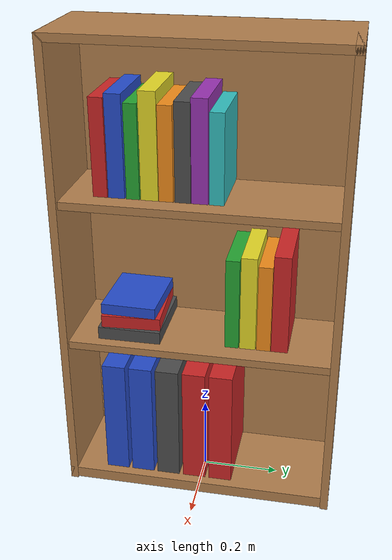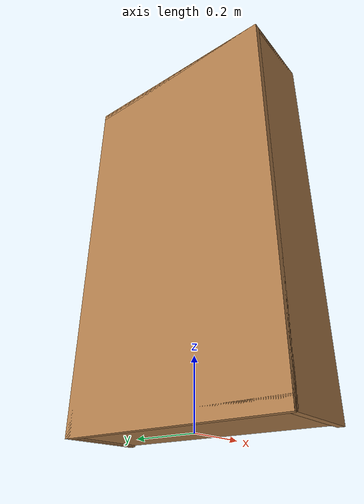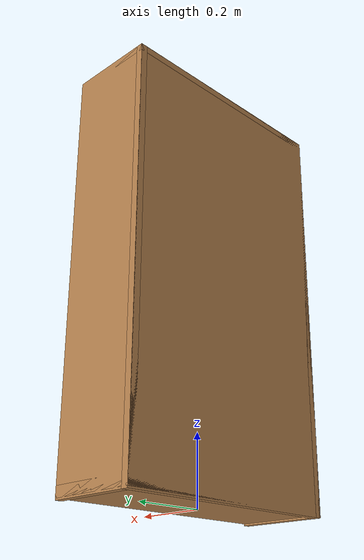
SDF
<?xml version="1.0" ?>
<sdf version="1.6">
  <model name="bookshelf_with_books">
    <static>true</static>
    <link name="bookshelf_link">
      <!-- Vách lưng tủ sách -->
      <collision name="col_back">
        <pose>-0.12 0 0.60 0 0 0</pose>
        <geometry>
          <box><size>0.02 0.70 1.20</size></box>
        </geometry>
      </collision>
      <visual name="vis_back">
        <pose>-0.12 0 0.60 0 0 0</pose>
        <geometry>
          <box><size>0.02 0.70 1.20</size></box>
        </geometry>
        <material>
          <script>
            <uri>file://media/materials/scripts/gazebo.material</uri>
            <name>Gazebo/Wood</name>
          </script>
        </material>
      </visual>

      <!-- Vách hông trái -->
      <collision name="col_left">
        <pose>0 0.34 0.60 0 0 0</pose>
        <geometry>
          <box><size>0.26 0.02 1.20</size></box>
        </geometry>
      </collision>
      <visual name="vis_left">
        <pose>0 0.34 0.60 0 0 0</pose>
        <geometry>
          <box><size>0.26 0.02 1.20</size></box>
        </geometry>
        <material>
          <script>
            <uri>file://media/materials/scripts/gazebo.material</uri>
            <name>Gazebo/Wood</name>
          </script>
        </material>
      </visual>

      <!-- Vách hông phải -->
      <collision name="col_right">
        <pose>0 -0.34 0.60 0 0 0</pose>
        <geometry>
          <box><size>0.26 0.02 1.20</size></box>
        </geometry>
      </collision>
      <visual name="vis_right">
        <pose>0 -0.34 0.60 0 0 0</pose>
        <geometry>
          <box><size>0.26 0.02 1.20</size></box>
        </geometry>
        <material>
          <script>
            <uri>file://media/materials/scripts/gazebo.material</uri>
            <name>Gazebo/Wood</name>
          </script>
        </material>
      </visual>

      <!-- Đáy tủ -->
      <collision name="col_shelf_base">
        <pose>0 0 0.02 0 0 0</pose>
        <geometry>
          <box><size>0.26 0.70 0.03</size></box>
        </geometry>
      </collision>
      <visual name="vis_shelf_base">
        <pose>0 0 0.02 0 0 0</pose>
        <geometry>
          <box><size>0.26 0.70 0.03</size></box>
        </geometry>
        <material>
          <script>
            <uri>file://media/materials/scripts/gazebo.material</uri>
            <name>Gazebo/Wood</name>
          </script>
        </material>
      </visual>

      <!-- Ngăn đợt 1 (giữa dưới) -->
      <collision name="col_shelf_1">
        <pose>0 0 0.42 0 0 0</pose>
        <geometry>
          <box><size>0.24 0.66 0.02</size></box>
        </geometry>
      </collision>
      <visual name="vis_shelf_1">
        <pose>0 0 0.42 0 0 0</pose>
        <geometry>
          <box><size>0.24 0.66 0.02</size></box>
        </geometry>
        <material>
          <script>
            <uri>file://media/materials/scripts/gazebo.material</uri>
            <name>Gazebo/Wood</name>
          </script>
        </material>
      </visual>

      <!-- Ngăn đợt 2 (giữa trên) -->
      <collision name="col_shelf_2">
        <pose>0 0 0.80 0 0 0</pose>
        <geometry>
          <box><size>0.24 0.66 0.02</size></box>
        </geometry>
      </collision>
      <visual name="vis_shelf_2">
        <pose>0 0 0.80 0 0 0</pose>
        <geometry>
          <box><size>0.24 0.66 0.02</size></box>
        </geometry>
        <material>
          <script>
            <uri>file://media/materials/scripts/gazebo.material</uri>
            <name>Gazebo/Wood</name>
          </script>
        </material>
      </visual>

      <!-- Nóc tủ -->
      <collision name="col_shelf_top">
        <pose>0 0 1.19 0 0 0</pose>
        <geometry>
          <box><size>0.26 0.70 0.02</size></box>
        </geometry>
      </collision>
      <visual name="vis_shelf_top">
        <pose>0 0 1.19 0 0 0</pose>
        <geometry>
          <box><size>0.26 0.70 0.02</size></box>
        </geometry>
        <material>
          <script>
            <uri>file://media/materials/scripts/gazebo.material</uri>
            <name>Gazebo/Wood</name>
          </script>
        </material>
      </visual>

      <!-- CÁC QUYỂN SÁCH Ở NGĂN TRÊN (SHELF 2)      -->
      <visual name="vis_book_top_1">
        <pose>-0.02 -0.24 0.93 0 0 0</pose>
        <geometry><box><size>0.18 0.035 0.24</size></box></geometry>
        <material><script><uri>file://media/materials/scripts/gazebo.material</uri><name>Gazebo/Red</name></script></material>
      </visual>
      <visual name="vis_book_top_2">
        <pose>-0.02 -0.20 0.935 0 0 0</pose>
        <geometry><box><size>0.18 0.040 0.25</size></box></geometry>
        <material><script><uri>file://media/materials/scripts/gazebo.material</uri><name>Gazebo/Blue</name></script></material>
      </visual>
      <visual name="vis_book_top_3">
        <pose>-0.02 -0.16 0.925 0 0 0</pose>
        <geometry><box><size>0.18 0.032 0.23</size></box></geometry>
        <material><script><uri>file://media/materials/scripts/gazebo.material</uri><name>Gazebo/Green</name></script></material>
      </visual>
      <visual name="vis_book_top_4">
        <pose>-0.02 -0.12 0.94 0 0 0</pose>
        <geometry><box><size>0.18 0.042 0.26</size></box></geometry>
        <material><script><uri>file://media/materials/scripts/gazebo.material</uri><name>Gazebo/Yellow</name></script></material>
      </visual>
      <visual name="vis_book_top_5">
        <pose>-0.02 -0.08 0.925 0 0 0</pose>
        <geometry><box><size>0.18 0.035 0.23</size></box></geometry>
        <material><script><uri>file://media/materials/scripts/gazebo.material</uri><name>Gazebo/Orange</name></script></material>
      </visual>
      <visual name="vis_book_top_6">
        <pose>-0.02 -0.04 0.93 0 0 0</pose>
        <geometry><box><size>0.18 0.038 0.24</size></box></geometry>
        <material><script><uri>file://media/materials/scripts/gazebo.material</uri><name>Gazebo/DarkGrey</name></script></material>
      </visual>
      <visual name="vis_book_top_7">
        <pose>-0.02 0.00 0.935 0 0 0</pose>
        <geometry><box><size>0.18 0.040 0.25</size></box></geometry>
        <material><script><uri>file://media/materials/scripts/gazebo.material</uri><name>Gazebo/Purple</name></script></material>
      </visual>
      <visual name="vis_book_top_8">
        <pose>-0.02 0.04 0.92 0 0 0</pose>
        <geometry><box><size>0.18 0.035 0.22</size></box></geometry>
        <material><script><uri>file://media/materials/scripts/gazebo.material</uri><name>Gazebo/Turquoise</name></script></material>
      </visual>

      <!-- CÁC QUYỂN SÁCH Ở NGĂN GIỮA (SHELF 1)      -->
      <!-- Chồng 3 quyển sách nằm ngang -->
      <visual name="vis_stack_1">
        <pose>-0.01 -0.18 0.445 0 0 0</pose>
        <geometry><box><size>0.20 0.16 0.035</size></box></geometry>
        <material><script><uri>file://media/materials/scripts/gazebo.material</uri><name>Gazebo/DarkGrey</name></script></material>
      </visual>
      <visual name="vis_stack_2">
        <pose>-0.01 -0.18 0.48 0 0 0.05</pose>
        <geometry><box><size>0.19 0.15 0.032</size></box></geometry>
        <material><script><uri>file://media/materials/scripts/gazebo.material</uri><name>Gazebo/Red</name></script></material>
      </visual>
      <visual name="vis_stack_3">
        <pose>-0.01 -0.18 0.51 0 0 -0.03</pose>
        <geometry><box><size>0.18 0.14 0.028</size></box></geometry>
        <material><script><uri>file://media/materials/scripts/gazebo.material</uri><name>Gazebo/Blue</name></script></material>
      </visual>

      <!-- Dãy sách đứng bên phải ngăn giữa -->
      <visual name="vis_book_mid_1">
        <pose>-0.02 0.08 0.55 0 0 0</pose>
        <geometry><box><size>0.18 0.035 0.24</size></box></geometry>
        <material><script><uri>file://media/materials/scripts/gazebo.material</uri><name>Gazebo/Green</name></script></material>
      </visual>
      <visual name="vis_book_mid_2">
        <pose>-0.02 0.12 0.555 0 0 0</pose>
        <geometry><box><size>0.18 0.040 0.25</size></box></geometry>
        <material><script><uri>file://media/materials/scripts/gazebo.material</uri><name>Gazebo/Yellow</name></script></material>
      </visual>
      <visual name="vis_book_mid_3">
        <pose>-0.02 0.16 0.545 0 0 0</pose>
        <geometry><box><size>0.18 0.035 0.23</size></box></geometry>
        <material><script><uri>file://media/materials/scripts/gazebo.material</uri><name>Gazebo/Orange</name></script></material>
      </visual>
      <visual name="vis_book_mid_4">
        <pose>-0.02 0.20 0.56 0 0 0</pose>
        <geometry><box><size>0.18 0.042 0.26</size></box></geometry>
        <material><script><uri>file://media/materials/scripts/gazebo.material</uri><name>Gazebo/Red</name></script></material>
      </visual>

      <!-- CÁC TẬP HỒ SƠ / BINDER Ở NGĂN DƯỚI        -->
      <visual name="vis_binder_1">
        <pose>0 -0.22 0.20 0 0 0</pose>
        <geometry><box><size>0.22 0.06 0.32</size></box></geometry>
        <material><script><uri>file://media/materials/scripts/gazebo.material</uri><name>Gazebo/Blue</name></script></material>
      </visual>
      <visual name="vis_binder_2">
        <pose>0 -0.15 0.20 0 0 0</pose>
        <geometry><box><size>0.22 0.06 0.32</size></box></geometry>
        <material><script><uri>file://media/materials/scripts/gazebo.material</uri><name>Gazebo/Blue</name></script></material>
      </visual>
      <visual name="vis_binder_3">
        <pose>0 -0.08 0.20 0 0 0</pose>
        <geometry><box><size>0.22 0.06 0.32</size></box></geometry>
        <material><script><uri>file://media/materials/scripts/gazebo.material</uri><name>Gazebo/DarkGrey</name></script></material>
      </visual>
      <visual name="vis_binder_4">
        <pose>0 -0.01 0.20 0 0 0</pose>
        <geometry><box><size>0.22 0.06 0.32</size></box></geometry>
        <material><script><uri>file://media/materials/scripts/gazebo.material</uri><name>Gazebo/Red</name></script></material>
      </visual>
      <visual name="vis_binder_5">
        <pose>0 0.06 0.20 0 0 0</pose>
        <geometry><box><size>0.22 0.06 0.32</size></box></geometry>
        <material><script><uri>file://media/materials/scripts/gazebo.material</uri><name>Gazebo/Red</name></script></material>
      </visual>
    </link>
  </model>
</sdf>
